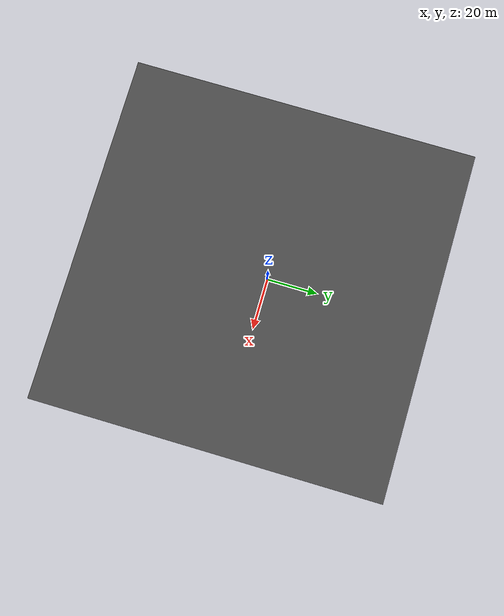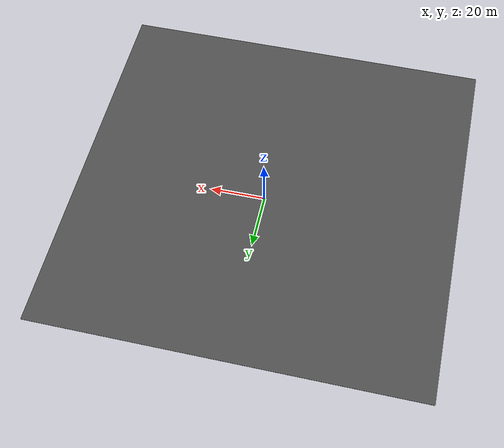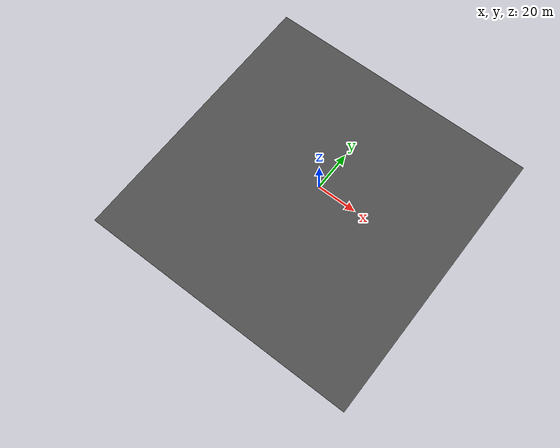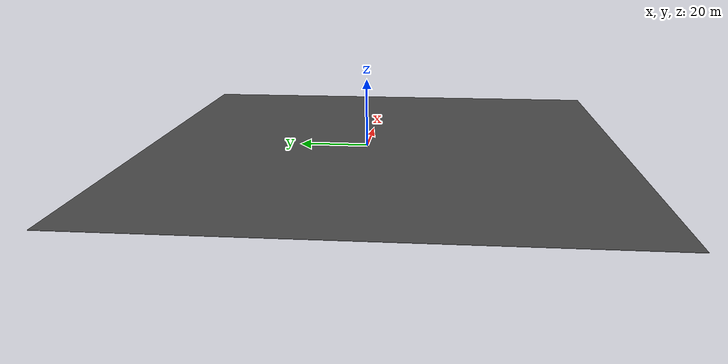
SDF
<sdf version="1.4">
 <world name="default">
  <light name="sun" type="directional">
   <pose>0 0 10 0 -0 0</pose>
   <diffuse>0.8 0.8 0.8 1</diffuse>
   <specular>0.2 0.2 0.2 1</specular>
   <attenuation>
    <range>1000</range>
    <constant>0.9</constant>
    <linear>0.01</linear>
    <quadratic>0.001</quadratic>
   </attenuation>
   <direction>-0.5 0.1 -0.9</direction>
  </light>
  <physics type="ode">
   <max_step_size>0.001</max_step_size>
   <real_time_factor>1</real_time_factor>
   <real_time_update_rate>1000</real_time_update_rate>
   <gravity>0 0 -9.8</gravity>
  </physics>
  <scene><ambient>0.4 0.4 0.4 1</ambient><background>0.7 0.7 0.7 1</background><shadows>1</shadows></scene>
  <model name="asphalt_plane">
   <static>1</static>
   <link name="link">
    <collision name="collision"><geometry><box><size>140 140 0.1</size></box></geometry></collision>
    <visual name="visual">
     <cast_shadows>0</cast_shadows>
     <geometry><box><size>140 140 0.1</size></box></geometry>
     <material>
      <script>
       <uri>model://asphalt_plane/materials/scripts</uri>
       <uri>model://asphalt_plane/materials/textures</uri>
       <name>vrc/asphalt</name>
      </script>
     </material>
    </visual>
    <velocity_decay><linear>0</linear><angular>0</angular></velocity_decay>
   </link>
   <pose>-0.43686 -4.75094 0 0 -0 0</pose>
  </model>
 </world>
</sdf>
